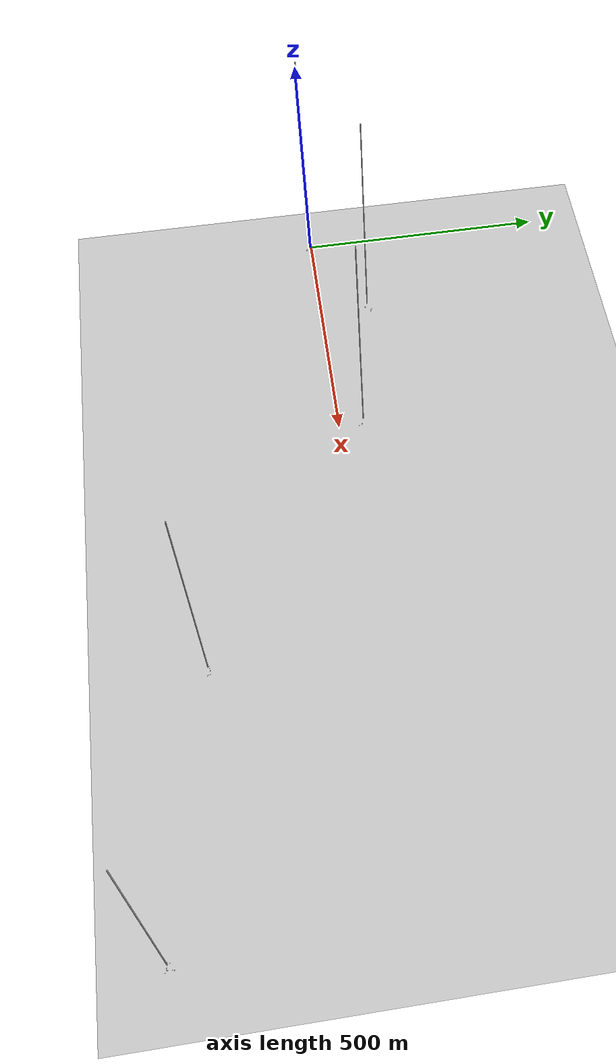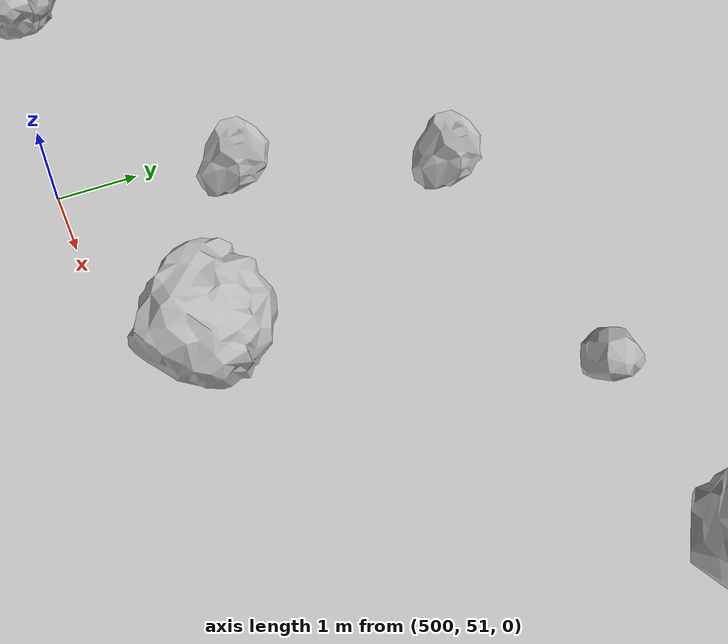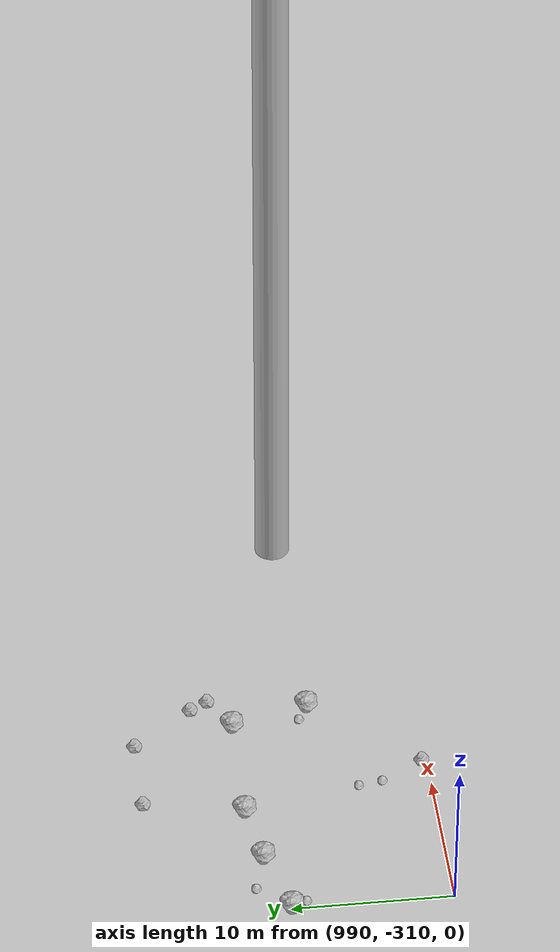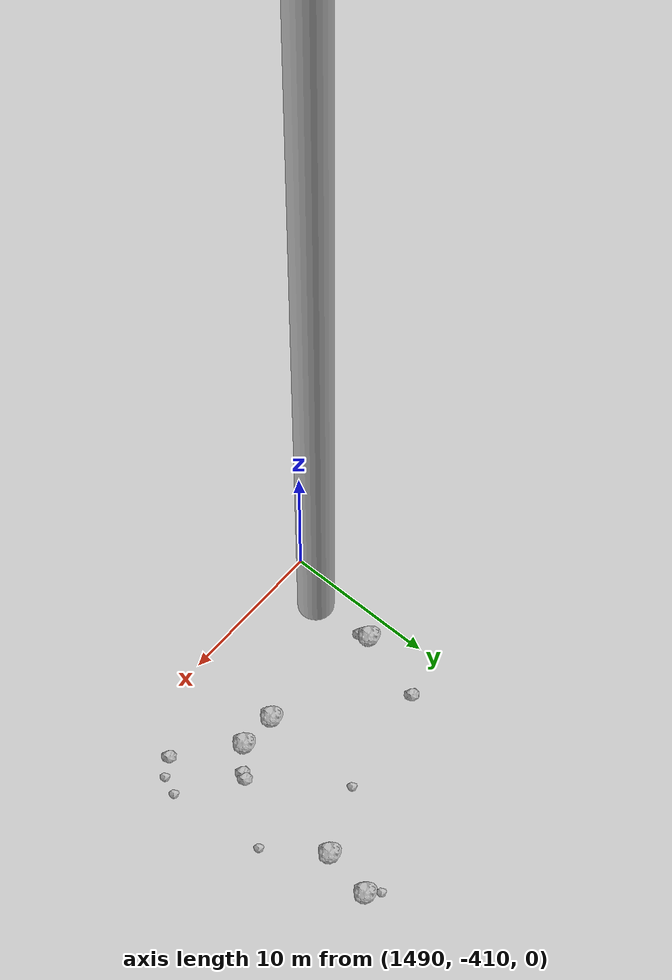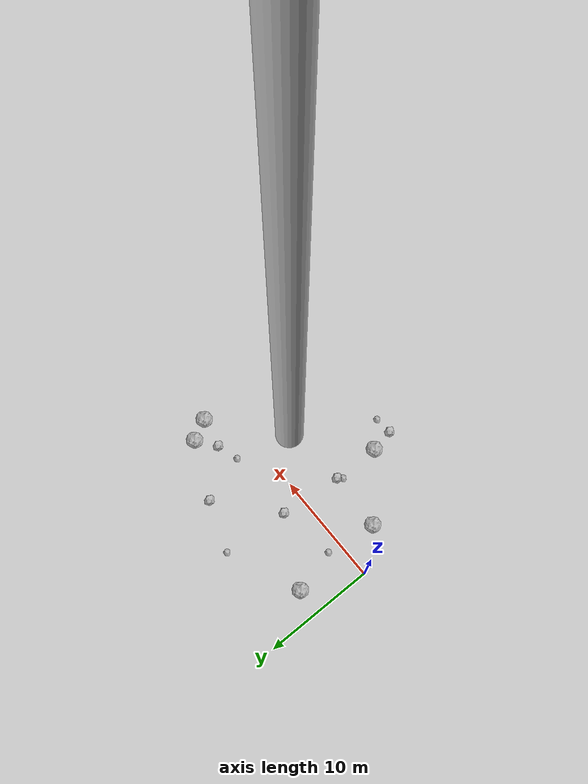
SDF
<?xml version="1.0" ?>
<sdf version="1.6">
  <world name="default">

    <include>
      <uri>model://custom_ground</uri>
    </include>

    <include>
      <uri>model://sun</uri>
    </include>

    <spherical_coordinates>
      <surface_model>EARTH_WGS84</surface_model>
      <latitude_deg>38.161479</latitude_deg>
      <longitude_deg>-122.454630</longitude_deg>
      <elevation>488.0</elevation>
      <heading_deg>90</heading_deg>
    </spherical_coordinates>

    <model name="rock1_0_0">
      <include>
        <uri>model://rock1</uri>
        <pose>2.7749837116183995 -3.2028812269850064 0.5 0 0 0</pose>
      </include>
    </model>
    <model name="rock1_0_1">
      <include>
        <uri>model://rock1</uri>
        <pose>7.736047427199488 -7.563085598302715 0.5 0 0 0</pose>
      </include>
    </model>
    <model name="rock1_0_2">
      <include>
        <uri>model://rock1</uri>
        <pose>18.241397133666325 3.9843764388373657 0.5 0 0 0</pose>
      </include>
    </model>
    <model name="rock1_0_3">
      <include>
        <uri>model://rock1</uri>
        <pose>19.168177666314826 2.1848561574827094 0.5 0 0 0</pose>
      </include>
    </model>
    <model name="rock1_0_4">
      <include>
        <uri>model://rock1</uri>
        <pose>2.4033097353455712 5.129369090338633 0.5 0 0 0</pose>
      </include>
    </model>
    <model name="rock2_0_0">
      <include>
        <uri>model://rock2</uri>
        <pose>8.390775544209637 2.0130148200792792 0.3 0 0 0</pose>
      </include>
    </model>
    <model name="rock2_0_1">
      <include>
        <uri>model://rock2</uri>
        <pose>16.574435091449736 2.707592531672912 0.3 0 0 0</pose>
      </include>
    </model>
    <model name="rock2_0_2">
      <include>
        <uri>model://rock2</uri>
        <pose>8.085879684193616 -9.611658209751802 0.3 0 0 0</pose>
      </include>
    </model>
    <model name="rock2_0_3">
      <include>
        <uri>model://rock2</uri>
        <pose>13.300722570928533 6.269859623327779 0.3 0 0 0</pose>
      </include>
    </model>
    <model name="rock2_0_4">
      <include>
        <uri>model://rock2</uri>
        <pose>7.842216486265771 -3.455190855817712 0.3 0 0 0</pose>
      </include>
    </model>
    <model name="rock3_0_0">
      <include>
        <uri>model://rock3</uri>
        <pose>3.332756647984143 1.1944665518797102 0.2 0 0 0</pose>
      </include>
    </model>
    <model name="rock3_0_1">
      <include>
        <uri>model://rock3</uri>
        <pose>7.472903849103822 -3.8984264805779656 0.2 0 0 0</pose>
      </include>
    </model>
    <model name="rock3_0_2">
      <include>
        <uri>model://rock3</uri>
        <pose>14.631306242937118 2.1003662656965183 0.2 0 0 0</pose>
      </include>
    </model>
    <model name="rock3_0_3">
      <include>
        <uri>model://rock3</uri>
        <pose>8.819545675498864 7.892827049114231 0.2 0 0 0</pose>
      </include>
    </model>
    <model name="rock3_0_4">
      <include>
        <uri>model://rock3</uri>
        <pose>9.600160944445143 -9.53020318373525 0.2 0 0 0</pose>
      </include>
    </model>
    <model name="rock1_1_0">
      <include>
        <uri>model://rock1</uri>
        <pose>205.29744954330312 106.94932069825757 0.5 0 0 0</pose>
      </include>
    </model>
    <model name="rock1_1_1">
      <include>
        <uri>model://rock1</uri>
        <pose>192.75297987090488 95.86966962608327 0.5 0 0 0</pose>
      </include>
    </model>
    <model name="rock1_1_2">
      <include>
        <uri>model://rock1</uri>
        <pose>202.15653687898563 107.92111805737252 0.5 0 0 0</pose>
      </include>
    </model>
    <model name="rock1_1_3">
      <include>
        <uri>model://rock1</uri>
        <pose>194.4231269787339 97.49364187816794 0.5 0 0 0</pose>
      </include>
    </model>
    <model name="rock1_1_4">
      <include>
        <uri>model://rock1</uri>
        <pose>200.72004474264006 109.56084195489936 0.5 0 0 0</pose>
      </include>
    </model>
    <model name="rock2_1_0">
      <include>
        <uri>model://rock2</uri>
        <pose>200.82556427157712 106.86670333414315 0.3 0 0 0</pose>
      </include>
    </model>
    <model name="rock2_1_1">
      <include>
        <uri>model://rock2</uri>
        <pose>192.7053670257754 97.90057405938877 0.3 0 0 0</pose>
      </include>
    </model>
    <model name="rock2_1_2">
      <include>
        <uri>model://rock2</uri>
        <pose>208.9553411450652 103.21474709625767 0.3 0 0 0</pose>
      </include>
    </model>
    <model name="rock2_1_3">
      <include>
        <uri>model://rock2</uri>
        <pose>198.8411012388424 97.29290735259269 0.3 0 0 0</pose>
      </include>
    </model>
    <model name="rock2_1_4">
      <include>
        <uri>model://rock2</uri>
        <pose>197.65793058042917 103.09698259386987 0.3 0 0 0</pose>
      </include>
    </model>
    <model name="rock3_1_0">
      <include>
        <uri>model://rock3</uri>
        <pose>208.6092254346043 96.35664110433505 0.2 0 0 0</pose>
      </include>
    </model>
    <model name="rock3_1_1">
      <include>
        <uri>model://rock3</uri>
        <pose>200.80622980910056 93.68823956419709 0.2 0 0 0</pose>
      </include>
    </model>
    <model name="rock3_1_2">
      <include>
        <uri>model://rock3</uri>
        <pose>199.15193880489983 107.06639878971458 0.2 0 0 0</pose>
      </include>
    </model>
    <model name="rock3_1_3">
      <include>
        <uri>model://rock3</uri>
        <pose>195.75140512828494 93.4421569766927 0.2 0 0 0</pose>
      </include>
    </model>
    <model name="rock3_1_4">
      <include>
        <uri>model://rock3</uri>
        <pose>203.04922491041648 95.84831902637144 0.2 0 0 0</pose>
      </include>
    </model>
    <model name="rock1_2_0">
      <include>
        <uri>model://rock1</uri>
        <pose>503.5789644251412 41.264413839592166 0.5 0 0 0</pose>
      </include>
    </model>
    <model name="rock1_2_1">
      <include>
        <uri>model://rock1</uri>
        <pose>503.13049787492054 51.866336445709145 0.5 0 0 0</pose>
      </include>
    </model>
    <model name="rock1_2_2">
      <include>
        <uri>model://rock1</uri>
        <pose>500.857904242321 47.34172012412223 0.5 0 0 0</pose>
      </include>
    </model>
    <model name="rock1_2_3">
      <include>
        <uri>model://rock1</uri>
        <pose>495.50192617616324 51.35804498959303 0.5 0 0 0</pose>
      </include>
    </model>
    <model name="rock1_2_4">
      <include>
        <uri>model://rock1</uri>
        <pose>507.3003964135992 55.31300711408933 0.5 0 0 0</pose>
      </include>
    </model>
    <model name="rock2_2_0">
      <include>
        <uri>model://rock2</uri>
        <pose>509.613587669074 50.00818152309829 0.3 0 0 0</pose>
      </include>
    </model>
    <model name="rock2_2_1">
      <include>
        <uri>model://rock2</uri>
        <pose>499.34195721937306 47.81454447958366 0.3 0 0 0</pose>
      </include>
    </model>
    <model name="rock2_2_2">
      <include>
        <uri>model://rock2</uri>
        <pose>501.646079082332 55.60269355334515 0.3 0 0 0</pose>
      </include>
    </model>
    <model name="rock2_2_3">
      <include>
        <uri>model://rock2</uri>
        <pose>506.6280217844835 42.62325747280258 0.3 0 0 0</pose>
      </include>
    </model>
    <model name="rock2_2_4">
      <include>
        <uri>model://rock2</uri>
        <pose>500.5801155297325 53.12568560311721 0.3 0 0 0</pose>
      </include>
    </model>
    <model name="rock3_2_0">
      <include>
        <uri>model://rock3</uri>
        <pose>501.2176104593189 45.87927459044284 0.2 0 0 0</pose>
      </include>
    </model>
    <model name="rock3_2_1">
      <include>
        <uri>model://rock3</uri>
        <pose>496.68981767171476 44.50233832845171 0.2 0 0 0</pose>
      </include>
    </model>
    <model name="rock3_2_2">
      <include>
        <uri>model://rock3</uri>
        <pose>506.8278465483647 47.44250269638647 0.2 0 0 0</pose>
      </include>
    </model>
    <model name="rock3_2_3">
      <include>
        <uri>model://rock3</uri>
        <pose>493.0539566921891 46.85610582037389 0.2 0 0 0</pose>
      </include>
    </model>
    <model name="rock3_2_4">
      <include>
        <uri>model://rock3</uri>
        <pose>505.0296149760159 55.419113947625505 0.2 0 0 0</pose>
      </include>
    </model>
    <model name="rock1_3_0">
      <include>
        <uri>model://rock1</uri>
        <pose>998.8343319597076 -298.1133576453873 0.5 0 0 0</pose>
      </include>
    </model>
    <model name="rock1_3_1">
      <include>
        <uri>model://rock1</uri>
        <pose>1008.0126233962997 -303.02968721423815 0.5 0 0 0</pose>
      </include>
    </model>
    <model name="rock1_3_2">
      <include>
        <uri>model://rock1</uri>
        <pose>1006.6248397379735 -298.1224396308906 0.5 0 0 0</pose>
      </include>
    </model>
    <model name="rock1_3_3">
      <include>
        <uri>model://rock1</uri>
        <pose>994.6636827325887 -298.8142083683859 0.5 0 0 0</pose>
      </include>
    </model>
    <model name="rock1_3_4">
      <include>
        <uri>model://rock1</uri>
        <pose>990.2259490281194 -300.07125204988444 0.5 0 0 0</pose>
      </include>
    </model>
    <model name="rock2_3_0">
      <include>
        <uri>model://rock2</uri>
        <pose>1001.9597115410393 -309.6151236267518 0.3 0 0 0</pose>
      </include>
    </model>
    <model name="rock2_3_1">
      <include>
        <uri>model://rock2</uri>
        <pose>1008.178677665257 -295.60674785914296 0.3 0 0 0</pose>
      </include>
    </model>
    <model name="rock2_3_2">
      <include>
        <uri>model://rock2</uri>
        <pose>1008.8500847614278 -296.7422359074023 0.3 0 0 0</pose>
      </include>
    </model>
    <model name="rock2_3_3">
      <include>
        <uri>model://rock2</uri>
        <pose>999.8886506751061 -291.88464766637446 0.3 0 0 0</pose>
      </include>
    </model>
    <model name="rock2_3_4">
      <include>
        <uri>model://rock2</uri>
        <pose>1005.1872274731825 -291.805383601845 0.3 0 0 0</pose>
      </include>
    </model>
    <model name="rock3_3_0">
      <include>
        <uri>model://rock3</uri>
        <pose>1006.6187010875959 -302.4390891684542 0.2 0 0 0</pose>
      </include>
    </model>
    <model name="rock3_3_1">
      <include>
        <uri>model://rock3</uri>
        <pose>991.8084269990212 -298.11837489252207 0.2 0 0 0</pose>
      </include>
    </model>
    <model name="rock3_3_2">
      <include>
        <uri>model://rock3</uri>
        <pose>1000.4128888718409 -306.9588930886427 0.2 0 0 0</pose>
      </include>
    </model>
    <model name="rock3_3_3">
      <include>
        <uri>model://rock3</uri>
        <pose>1000.1560416600312 -305.45327260261445 0.2 0 0 0</pose>
      </include>
    </model>
    <model name="rock3_3_4">
      <include>
        <uri>model://rock3</uri>
        <pose>990.4504278381261 -301.0229800096119 0.2 0 0 0</pose>
      </include>
    </model>
    <model name="rock1_4_0">
      <include>
        <uri>model://rock1</uri>
        <pose>1491.603760750793 -402.94307293731674 0.5 0 0 0</pose>
      </include>
    </model>
    <model name="rock1_4_1">
      <include>
        <uri>model://rock1</uri>
        <pose>1499.9319725669827 -403.9565870048481 0.5 0 0 0</pose>
      </include>
    </model>
    <model name="rock1_4_2">
      <include>
        <uri>model://rock1</uri>
        <pose>1505.1066006306862 -391.97412469774224 0.5 0 0 0</pose>
      </include>
    </model>
    <model name="rock1_4_3">
      <include>
        <uri>model://rock1</uri>
        <pose>1502.4132373725636 -404.04584819993573 0.5 0 0 0</pose>
      </include>
    </model>
    <model name="rock1_4_4">
      <include>
        <uri>model://rock1</uri>
        <pose>1504.5352958438837 -395.25710729360054 0.5 0 0 0</pose>
      </include>
    </model>
    <model name="rock2_4_0">
      <include>
        <uri>model://rock2</uri>
        <pose>1503.8646062470534 -402.8191288314804 0.3 0 0 0</pose>
      </include>
    </model>
    <model name="rock2_4_1">
      <include>
        <uri>model://rock2</uri>
        <pose>1491.7262718856364 -403.5129093450996 0.3 0 0 0</pose>
      </include>
    </model>
    <model name="rock2_4_2">
      <include>
        <uri>model://rock2</uri>
        <pose>1504.090110261685 -402.43835490861704 0.3 0 0 0</pose>
      </include>
    </model>
    <model name="rock2_4_3">
      <include>
        <uri>model://rock2</uri>
        <pose>1506.0044815489698 -407.03087484676956 0.3 0 0 0</pose>
      </include>
    </model>
    <model name="rock2_4_4">
      <include>
        <uri>model://rock2</uri>
        <pose>1492.9411806648409 -398.24798284371644 0.3 0 0 0</pose>
      </include>
    </model>
    <model name="rock3_4_0">
      <include>
        <uri>model://rock3</uri>
        <pose>1504.3135537528808 -391.3241107236014 0.2 0 0 0</pose>
      </include>
    </model>
    <model name="rock3_4_1">
      <include>
        <uri>model://rock3</uri>
        <pose>1500.1595693874967 -397.121216792562 0.2 0 0 0</pose>
      </include>
    </model>
    <model name="rock3_4_2">
      <include>
        <uri>model://rock3</uri>
        <pose>1506.9376597526955 -398.8350843058163 0.2 0 0 0</pose>
      </include>
    </model>
    <model name="rock3_4_3">
      <include>
        <uri>model://rock3</uri>
        <pose>1507.630406766625 -405.1692805445746 0.2 0 0 0</pose>
      </include>
    </model>
    <model name="rock3_4_4">
      <include>
        <uri>model://rock3</uri>
        <pose>1507.1526039850598 -406.361191144 0.2 0 0 0</pose>
      </include>
    </model>

    <model name="cylinder_1">
      <static>true</static>
      <link name="link">
        <visual name="visual">
          <geometry>
            <cylinder>
              <radius>1</radius>
              <length>500</length>
            </cylinder>
          </geometry>
        </visual>
      </link>
      <pose>10 0 270 0 0 0</pose>
    </model>

    <model name="cylinder_2">
      <static>true</static>
      <link name="link">
        <visual name="visual">
          <geometry>
            <cylinder>
              <radius>1</radius>
              <length>500</length>
            </cylinder>
          </geometry>
        </visual>
      </link>
      <pose>200 100 270 0 0 0</pose>
    </model>

    <model name="cylinder_3">
      <static>true</static>
      <link name="link">
        <visual name="visual">
          <geometry>
            <cylinder>
              <radius>1</radius>
              <length>500</length>
            </cylinder>
          </geometry>
        </visual>
      </link>
      <pose>500 50 270 0 0 0</pose>
    </model>

    <model name="cylinder_4">
      <static>true</static>
      <link name="link">
        <visual name="visual">
          <geometry>
            <cylinder>
              <radius>1</radius>
              <length>500</length>
            </cylinder>
          </geometry>
        </visual>
      </link>
      <pose>1000 -300 270 0 0 0</pose>
    </model>

    <model name="cylinder_5">
      <static>true</static>
      <link name="link">
        <visual name="visual">
          <geometry>
            <cylinder>
              <radius>1</radius>
              <length>500</length>
            </cylinder>
          </geometry>
        </visual>
      </link>
      <pose>1500 -400 270 0 0 0</pose>
    </model>

  </world>
</sdf>

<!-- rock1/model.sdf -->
<sdf version="1.6">
  <model name="rock1">
    <static>true</static> <!-- Set to true if the model should not move -->
    <pose>0 0 0 0 0 0</pose>

    <!--z offset is 0.5 for full scale-->

    <link name="link">
      <collision name="rock1_collision">
        <geometry>
          <mesh>
            <uri>model://meshes/rock1.dae</uri>
          </mesh>
        </geometry>
      </collision>
      <visual name="rock1_visual">
        <geometry>
          <mesh>
            <uri>model://meshes/rock1.dae</uri>
          </mesh>
        </geometry>
        <material>
          <script>
            <uri>model://materials/scripts/sand_pebbles.material</uri>
            <name>custom_ground/Image</name>
          </script>
        </material>
      </visual>
    </link>
  </model>
</sdf>

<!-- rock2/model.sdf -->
<sdf version="1.6">
  <model name="rock2">
    <static>true</static> <!-- Set to true if the model should not move -->
    <pose>0 0 0 0 0 0</pose>

    <!--z offset is 0.3 for full scale-->

    <link name="link">
      <collision name="rock2_collision">
        <geometry>
          <mesh>
            <uri>model://meshes/rock2.dae</uri>
          </mesh>
        </geometry>
      </collision>
      <visual name="rock2_visual">
        <geometry>
          <mesh>
            <uri>model://meshes/rock2.dae</uri>
          </mesh>
        </geometry>
        <material>
          <script>
            <uri>model://materials/scripts/sand_pebbles.material</uri>
            <name>custom_ground/Image</name>
          </script>
        </material>
      </visual>
    </link>
  </model>
</sdf>

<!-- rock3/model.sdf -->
<sdf version="1.6">
  <model name="rock3">
    <static>true</static> <!-- Set to true if the model should not move -->
    <pose>0 0 0 0 0 0</pose>

    <!--z offset is 0.2 for full scale-->

    <link name="link">
      <collision name="rock3_collision">
        <geometry>
          <mesh>
            <uri>model://meshes/rock3.dae</uri>
          </mesh>
        </geometry>
      </collision>
      <visual name="rock3_visual">
        <geometry>
          <mesh>
            <uri>model://meshes/rock3.dae</uri>
          </mesh>
        </geometry>
        <material>
          <script>
            <uri>model://materials/scripts/sand_pebbles.material</uri>
            <name>custom_ground/Image</name>
          </script>
        </material>
      </visual>
    </link>
  </model>
</sdf>

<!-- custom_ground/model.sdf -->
<sdf version="1.6">
  <model name="custom_ground">
    <static>true</static> <!-- Ground is static and immovable -->
    <link name="ground_link">
      <pose>240 0 0 0 0 0</pose> <!-- Position and orientation relative to the world -->
      <!-- Visual Representation -->
      <visual name="ground_visual">
        <geometry>
          <plane>
            <normal>0 0 1</normal> <!-- Upward facing plane -->
            <size>500 500</size> <!-- Size of the plane -->
          </plane>
        </geometry>
        <material>
          <script>
            <uri>model://materials/scripts/sand_pebbles.material</uri>
            <name>custom_ground/Image</name>
          </script>
        </material>
      </visual>

      <!-- Collision Representation -->
      <collision name="ground_collision">
        <geometry>
          <plane>
            <normal>0 0 1</normal>
            <size>100 100</size>
          </plane>
        </geometry>
      </collision>

    </link>
  </model>
</sdf>
